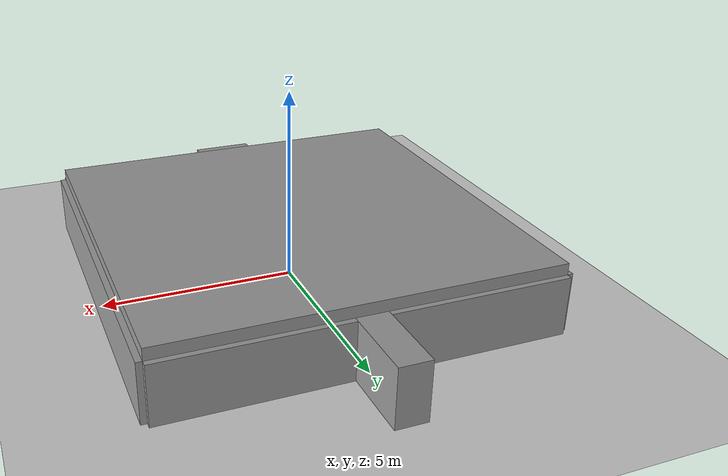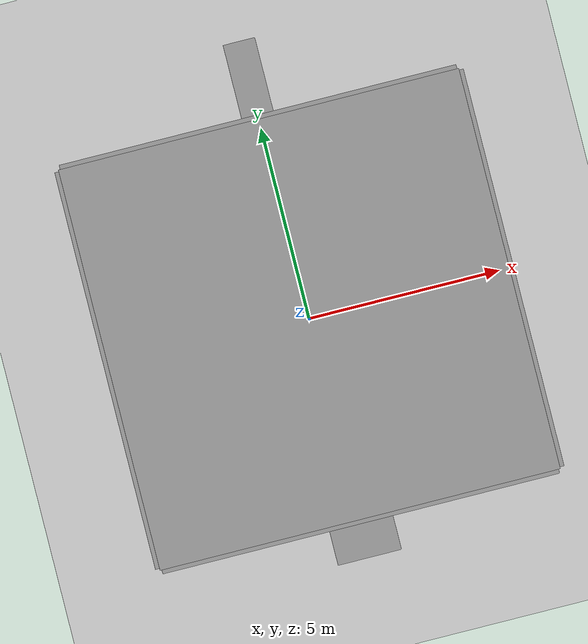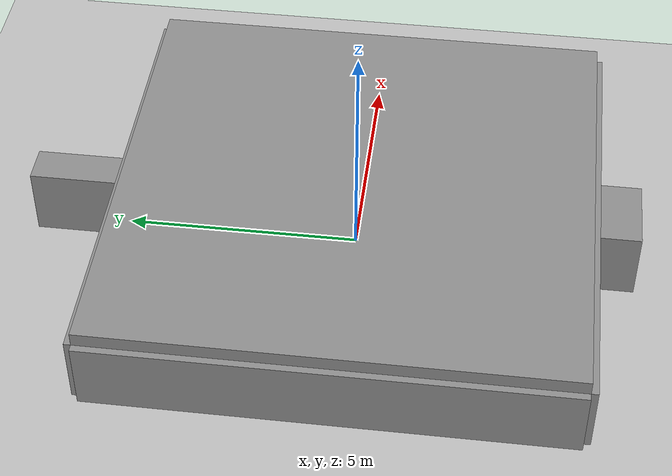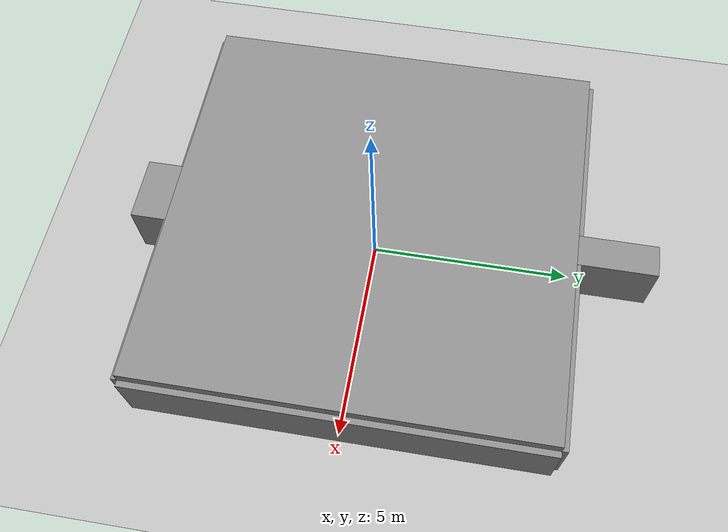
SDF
<sdf version="1.7">
 <world name="default">
  <light name="sun" type="directional">
   <pose>0 0 10 0 -0 0</pose>
   <diffuse>0.8 0.8 0.8 1</diffuse>
   <specular>0.2 0.2 0.2 1</specular>
   <attenuation>
    <range>1000</range>
    <constant>0.9</constant>
    <linear>0.01</linear>
    <quadratic>0.001</quadratic>
   </attenuation>
   <direction>-0.5 0.1 -0.9</direction>
   <spot><inner_angle>0</inner_angle><outer_angle>0</outer_angle><falloff>0</falloff></spot>
  </light>
  <model name="ground_plane">
   <static>1</static>
   <link name="link">
    <collision name="collision">
     <geometry><plane><normal>0 0 1</normal><size>100 100</size></plane></geometry>
     <surface>
      <contact><collide_bitmask>65535</collide_bitmask></contact>
      <friction><ode><mu>100</mu><mu2>50</mu2></ode></friction>
     </surface>
    </collision>
    <visual name="visual">
     <cast_shadows>0</cast_shadows>
     <geometry><plane><normal>0 0 1</normal><size>100 100</size></plane></geometry>
     <material>
      <script><uri>file://media/materials/scripts/gazebo.material</uri><name>Gazebo/Grey</name></script>
     </material>
    </visual>
   </link>
  </model>
  <gravity>0 0 -9.8</gravity>
  <magnetic_field>6e-06 2.3e-05 -4.2e-05</magnetic_field>
  <atmosphere type="adiabatic"/>
  <physics type="ode">
   <max_step_size>0.001</max_step_size>
   <real_time_factor>1</real_time_factor>
   <real_time_update_rate>1000</real_time_update_rate>
  </physics>
  <scene><ambient>0.4 0.4 0.4 1</ambient><background>0.7 0.7 0.7 1</background><shadows>1</shadows></scene>
  <spherical_coordinates>
   <surface_model>EARTH_WGS84</surface_model>
   <latitude_deg>0</latitude_deg>
   <longitude_deg>0</longitude_deg>
   <elevation>0</elevation>
   <heading_deg>0</heading_deg>
  </spherical_coordinates>
  <model name="arena">
   <link name="link_0">
    <inertial>
     <mass>1</mass>
     <inertia>
      <ixx>0.166667</ixx>
      <ixy>0</ixy>
      <ixz>0</ixz>
      <iyy>0.166667</iyy>
      <iyz>0</iyz>
      <izz>0.166667</izz>
     </inertia>
    </inertial>
    <pose>0 0 0.1 0 -0 0</pose>
    <visual name="visual">
     <pose>0 5 0 0 -0 0</pose>
     <geometry><box><size>10 0.3 2</size></box></geometry>
     <material>
      <lighting>1</lighting>
      <script><uri>file://media/materials/scripts/gazebo.material</uri><name>Gazebo/Grey</name></script>
      <shader type="pixel"><normal_map>__default__</normal_map></shader>
      <ambient>0.3 0.3 0.3 1</ambient>
      <diffuse>0.7 0.7 0.7 1</diffuse>
      <specular>0.01 0.01 0.01 1</specular>
      <emissive>0 0 0 1</emissive>
     </material>
    </visual>
    <collision name="collision">
     <laser_retro>1</laser_retro>
     <pose>0 5 0 0 -0 0</pose>
     <geometry><box><size>10 0.3 2</size></box></geometry>
     <surface>
      <friction>
       <ode><mu>1</mu><mu2>1</mu2><fdir1>0 0 0</fdir1><slip1>0</slip1><slip2>0</slip2></ode>
       <torsional>
        <coefficient>1</coefficient>
        <patch_radius>0</patch_radius>
        <surface_radius>0</surface_radius>
        <use_patch_radius>1</use_patch_radius>
        <ode><slip>0</slip></ode>
       </torsional>
      </friction>
      <bounce><restitution_coefficient>0</restitution_coefficient><threshold>1e+06</threshold></bounce>
      <contact>
       <collide_without_contact>0</collide_without_contact>
       <collide_without_contact_bitmask>1</collide_without_contact_bitmask>
       <collide_bitmask>1</collide_bitmask>
       <ode>
        <soft_cfm>0</soft_cfm>
        <soft_erp>0.2</soft_erp>
        <kp>1e+13</kp>
        <kd>1</kd>
        <max_vel>0.01</max_vel>
        <min_depth>0</min_depth>
       </ode>
       <bullet>
        <split_impulse>1</split_impulse>
        <split_impulse_penetration_threshold>-0.01</split_impulse_penetration_threshold>
        <soft_cfm>0</soft_cfm>
        <soft_erp>0.2</soft_erp>
        <kp>1e+13</kp>
        <kd>1</kd>
       </bullet>
      </contact>
     </surface>
    </collision>
   </link>
   <link name="link_0_clone">
    <inertial>
     <mass>1</mass>
     <inertia>
      <ixx>0.166667</ixx>
      <ixy>0</ixy>
      <ixz>0</ixz>
      <iyy>0.166667</iyy>
      <iyz>0</iyz>
      <izz>0.166667</izz>
     </inertia>
    </inertial>
    <pose>0 0 0.1 0 -0 0</pose>
    <visual name="visual">
     <pose>0 -5 0 0 -0 0</pose>
     <geometry><box><size>10 0.3 2</size></box></geometry>
     <material>
      <lighting>1</lighting>
      <script><uri>file://media/materials/scripts/gazebo.material</uri><name>Gazebo/Grey</name></script>
      <shader type="pixel"><normal_map>__default__</normal_map></shader>
      <ambient>0.3 0.3 0.3 1</ambient>
      <diffuse>0.7 0.7 0.7 1</diffuse>
      <specular>0.01 0.01 0.01 1</specular>
      <emissive>0 0 0 1</emissive>
     </material>
    </visual>
    <collision name="collision">
     <laser_retro>1</laser_retro>
     <pose>0 -5 0 0 -0 0</pose>
     <geometry><box><size>10 0.3 2</size></box></geometry>
     <surface>
      <friction>
       <ode><mu>1</mu><mu2>1</mu2><fdir1>0 0 0</fdir1><slip1>0</slip1><slip2>0</slip2></ode>
       <torsional>
        <coefficient>1</coefficient>
        <patch_radius>0</patch_radius>
        <surface_radius>0</surface_radius>
        <use_patch_radius>1</use_patch_radius>
        <ode><slip>0</slip></ode>
       </torsional>
      </friction>
      <bounce><restitution_coefficient>0</restitution_coefficient><threshold>1e+06</threshold></bounce>
      <contact>
       <collide_without_contact>0</collide_without_contact>
       <collide_without_contact_bitmask>1</collide_without_contact_bitmask>
       <collide_bitmask>1</collide_bitmask>
       <ode>
        <soft_cfm>0</soft_cfm>
        <soft_erp>0.2</soft_erp>
        <kp>1e+13</kp>
        <kd>1</kd>
        <max_vel>0.01</max_vel>
        <min_depth>0</min_depth>
       </ode>
       <bullet>
        <split_impulse>1</split_impulse>
        <split_impulse_penetration_threshold>-0.01</split_impulse_penetration_threshold>
        <soft_cfm>0</soft_cfm>
        <soft_erp>0.2</soft_erp>
        <kp>1e+13</kp>
        <kd>1</kd>
       </bullet>
      </contact>
     </surface>
    </collision>
   </link>
   <link name="link_0_clone_0">
    <inertial>
     <mass>1</mass>
     <inertia>
      <ixx>0.166667</ixx>
      <ixy>0</ixy>
      <ixz>0</ixz>
      <iyy>0.166667</iyy>
      <iyz>0</iyz>
      <izz>0.166667</izz>
     </inertia>
    </inertial>
    <pose>0 0 0.1 0 -0 0</pose>
    <visual name="visual">
     <pose>5 0 0 0 -0 0</pose>
     <geometry><box><size>0.3 10 2</size></box></geometry>
     <material>
      <lighting>1</lighting>
      <script><uri>file://media/materials/scripts/gazebo.material</uri><name>Gazebo/Grey</name></script>
      <shader type="pixel"><normal_map>__default__</normal_map></shader>
      <ambient>0.3 0.3 0.3 1</ambient>
      <diffuse>0.7 0.7 0.7 1</diffuse>
      <specular>0.01 0.01 0.01 1</specular>
      <emissive>0 0 0 1</emissive>
     </material>
    </visual>
    <collision name="collision">
     <laser_retro>1</laser_retro>
     <pose>5 0 0 0 -0 0</pose>
     <geometry><box><size>0.3 10 2</size></box></geometry>
     <surface>
      <friction>
       <ode><mu>1</mu><mu2>1</mu2><fdir1>0 0 0</fdir1><slip1>0</slip1><slip2>0</slip2></ode>
       <torsional>
        <coefficient>1</coefficient>
        <patch_radius>0</patch_radius>
        <surface_radius>0</surface_radius>
        <use_patch_radius>1</use_patch_radius>
        <ode><slip>0</slip></ode>
       </torsional>
      </friction>
      <bounce><restitution_coefficient>0</restitution_coefficient><threshold>1e+06</threshold></bounce>
      <contact>
       <collide_without_contact>0</collide_without_contact>
       <collide_without_contact_bitmask>1</collide_without_contact_bitmask>
       <collide_bitmask>1</collide_bitmask>
       <ode>
        <soft_cfm>0</soft_cfm>
        <soft_erp>0.2</soft_erp>
        <kp>1e+13</kp>
        <kd>1</kd>
        <max_vel>0.01</max_vel>
        <min_depth>0</min_depth>
       </ode>
       <bullet>
        <split_impulse>1</split_impulse>
        <split_impulse_penetration_threshold>-0.01</split_impulse_penetration_threshold>
        <soft_cfm>0</soft_cfm>
        <soft_erp>0.2</soft_erp>
        <kp>1e+13</kp>
        <kd>1</kd>
       </bullet>
      </contact>
     </surface>
    </collision>
   </link>
   <link name="link_0_clone_1">
    <inertial>
     <mass>1</mass>
     <inertia>
      <ixx>0.166667</ixx>
      <ixy>0</ixy>
      <ixz>0</ixz>
      <iyy>0.166667</iyy>
      <iyz>0</iyz>
      <izz>0.166667</izz>
     </inertia>
    </inertial>
    <pose>0 0 0.1 0 -0 0</pose>
    <visual name="visual">
     <pose>-5 0 0 0 -0 0</pose>
     <geometry><box><size>0.3 10 2</size></box></geometry>
     <material>
      <lighting>1</lighting>
      <script><uri>file://media/materials/scripts/gazebo.material</uri><name>Gazebo/Grey</name></script>
      <shader type="pixel"><normal_map>__default__</normal_map></shader>
      <ambient>0.3 0.3 0.3 1</ambient>
      <diffuse>0.7 0.7 0.7 1</diffuse>
      <specular>0.01 0.01 0.01 1</specular>
      <emissive>0 0 0 1</emissive>
     </material>
    </visual>
    <collision name="collision">
     <laser_retro>1</laser_retro>
     <pose>-5 0 0 0 -0 0</pose>
     <geometry><box><size>0.3 10 2</size></box></geometry>
     <surface>
      <friction>
       <ode><mu>1</mu><mu2>1</mu2><fdir1>0 0 0</fdir1><slip1>0</slip1><slip2>0</slip2></ode>
       <torsional>
        <coefficient>1</coefficient>
        <patch_radius>0</patch_radius>
        <surface_radius>0</surface_radius>
        <use_patch_radius>1</use_patch_radius>
        <ode><slip>0</slip></ode>
       </torsional>
      </friction>
      <bounce><restitution_coefficient>0</restitution_coefficient><threshold>1e+06</threshold></bounce>
      <contact>
       <collide_without_contact>0</collide_without_contact>
       <collide_without_contact_bitmask>1</collide_without_contact_bitmask>
       <collide_bitmask>1</collide_bitmask>
       <ode>
        <soft_cfm>0</soft_cfm>
        <soft_erp>0.2</soft_erp>
        <kp>1e+13</kp>
        <kd>1</kd>
        <max_vel>0.01</max_vel>
        <min_depth>0</min_depth>
       </ode>
       <bullet>
        <split_impulse>1</split_impulse>
        <split_impulse_penetration_threshold>-0.01</split_impulse_penetration_threshold>
        <soft_cfm>0</soft_cfm>
        <soft_erp>0.2</soft_erp>
        <kp>1e+13</kp>
        <kd>1</kd>
       </bullet>
      </contact>
     </surface>
    </collision>
   </link>
   <link name="link_1">
    <inertial>
     <mass>1</mass>
     <inertia>
      <ixx>0.166667</ixx>
      <ixy>0</ixy>
      <ixz>0</ixz>
      <iyy>0.166667</iyy>
      <iyz>0</iyz>
      <izz>0.166667</izz>
     </inertia>
    </inertial>
    <pose>0 0 0.1 0 -0 0</pose>
    <visual name="visual">
     <pose>0 5 0 0 -0 0</pose>
     <geometry><box><size>0.8 4 2</size></box></geometry>
     <material>
      <lighting>1</lighting>
      <script><uri>file://media/materials/scripts/gazebo.material</uri><name>Gazebo/Grey</name></script>
      <shader type="pixel"><normal_map>__default__</normal_map></shader>
      <ambient>0.3 0.3 0.3 1</ambient>
      <diffuse>0.7 0.7 0.7 1</diffuse>
      <specular>0.01 0.01 0.01 1</specular>
      <emissive>0 0 0 1</emissive>
     </material>
    </visual>
    <collision name="collision">
     <laser_retro>1</laser_retro>
     <pose>0 5 0 0 -0 0</pose>
     <geometry><box><size>0.8 4 2</size></box></geometry>
     <surface>
      <friction>
       <ode><mu>1</mu><mu2>1</mu2><fdir1>0 0 0</fdir1><slip1>0</slip1><slip2>0</slip2></ode>
       <torsional>
        <coefficient>1</coefficient>
        <patch_radius>0</patch_radius>
        <surface_radius>0</surface_radius>
        <use_patch_radius>1</use_patch_radius>
        <ode><slip>0</slip></ode>
       </torsional>
      </friction>
      <bounce><restitution_coefficient>0</restitution_coefficient><threshold>1e+06</threshold></bounce>
      <contact>
       <collide_without_contact>0</collide_without_contact>
       <collide_without_contact_bitmask>1</collide_without_contact_bitmask>
       <collide_bitmask>1</collide_bitmask>
       <ode>
        <soft_cfm>0</soft_cfm>
        <soft_erp>0.2</soft_erp>
        <kp>1e+13</kp>
        <kd>1</kd>
        <max_vel>0.01</max_vel>
        <min_depth>0</min_depth>
       </ode>
       <bullet>
        <split_impulse>1</split_impulse>
        <split_impulse_penetration_threshold>-0.01</split_impulse_penetration_threshold>
        <soft_cfm>0</soft_cfm>
        <soft_erp>0.2</soft_erp>
        <kp>1e+13</kp>
        <kd>1</kd>
       </bullet>
      </contact>
     </surface>
    </collision>
   </link>
   <link name="link_2">
    <inertial>
     <mass>1</mass>
     <inertia>
      <ixx>0.166667</ixx>
      <ixy>0</ixy>
      <ixz>0</ixz>
      <iyy>0.166667</iyy>
      <iyz>0</iyz>
      <izz>0.166667</izz>
     </inertia>
    </inertial>
    <pose>0 0 0.1 0 -0 0</pose>
    <visual name="visual">
     <pose>0 -5 0 0 -0 0</pose>
     <geometry><box><size>1.6 2 2</size></box></geometry>
     <material>
      <lighting>1</lighting>
      <script><uri>file://media/materials/scripts/gazebo.material</uri><name>Gazebo/Grey</name></script>
      <shader type="pixel"><normal_map>__default__</normal_map></shader>
      <ambient>0.3 0.3 0.3 1</ambient>
      <diffuse>0.7 0.7 0.7 1</diffuse>
      <specular>0.01 0.01 0.01 1</specular>
      <emissive>0 0 0 1</emissive>
     </material>
    </visual>
    <collision name="collision">
     <laser_retro>1</laser_retro>
     <pose>0 -5 0 0 -0 0</pose>
     <geometry><box><size>1.6 2 2</size></box></geometry>
     <surface>
      <friction>
       <ode><mu>1</mu><mu2>1</mu2><fdir1>0 0 0</fdir1><slip1>0</slip1><slip2>0</slip2></ode>
       <torsional>
        <coefficient>1</coefficient>
        <patch_radius>0</patch_radius>
        <surface_radius>0</surface_radius>
        <use_patch_radius>1</use_patch_radius>
        <ode><slip>0</slip></ode>
       </torsional>
      </friction>
      <bounce><restitution_coefficient>0</restitution_coefficient><threshold>1e+06</threshold></bounce>
      <contact>
       <collide_without_contact>0</collide_without_contact>
       <collide_without_contact_bitmask>1</collide_without_contact_bitmask>
       <collide_bitmask>1</collide_bitmask>
       <ode>
        <soft_cfm>0</soft_cfm>
        <soft_erp>0.2</soft_erp>
        <kp>1e+13</kp>
        <kd>1</kd>
        <max_vel>0.01</max_vel>
        <min_depth>0</min_depth>
       </ode>
       <bullet>
        <split_impulse>1</split_impulse>
        <split_impulse_penetration_threshold>-0.01</split_impulse_penetration_threshold>
        <soft_cfm>0</soft_cfm>
        <soft_erp>0.2</soft_erp>
        <kp>1e+13</kp>
        <kd>1</kd>
       </bullet>
      </contact>
     </surface>
    </collision>
   </link>
   <link name="link_0_clone_2">
    <inertial>
     <mass>1</mass>
     <inertia>
      <ixx>0.166667</ixx>
      <ixy>0</ixy>
      <ixz>0</ixz>
      <iyy>0.166667</iyy>
      <iyz>0</iyz>
      <izz>0.166667</izz>
     </inertia>
    </inertial>
    <pose>0 0 0.1 0 -0 0</pose>
    <visual name="visual">
     <pose>0 0 1.15 0 -0 0</pose>
     <geometry><box><size>10 10 0.3</size></box></geometry>
     <material>
      <lighting>1</lighting>
      <script><uri>file://media/materials/scripts/gazebo.material</uri><name>Gazebo/Grey</name></script>
      <shader type="pixel"><normal_map>__default__</normal_map></shader>
      <ambient>0.3 0.3 0.3 1</ambient>
      <diffuse>0.7 0.7 0.7 1</diffuse>
      <specular>0.01 0.01 0.01 1</specular>
      <emissive>0 0 0 1</emissive>
     </material>
    </visual>
    <collision name="collision">
     <laser_retro>1</laser_retro>
     <pose>0 0 1.15 0 -0 0</pose>
     <geometry><box><size>10 10 0.3</size></box></geometry>
     <surface>
      <friction>
       <ode><mu>1</mu><mu2>1</mu2><fdir1>0 0 0</fdir1><slip1>0</slip1><slip2>0</slip2></ode>
       <torsional>
        <coefficient>1</coefficient>
        <patch_radius>0</patch_radius>
        <surface_radius>0</surface_radius>
        <use_patch_radius>1</use_patch_radius>
        <ode><slip>0</slip></ode>
       </torsional>
      </friction>
      <bounce><restitution_coefficient>0</restitution_coefficient><threshold>1e+06</threshold></bounce>
      <contact>
       <collide_without_contact>0</collide_without_contact>
       <collide_without_contact_bitmask>1</collide_without_contact_bitmask>
       <collide_bitmask>1</collide_bitmask>
       <ode>
        <soft_cfm>0</soft_cfm>
        <soft_erp>0.2</soft_erp>
        <kp>1e+13</kp>
        <kd>1</kd>
        <max_vel>0.01</max_vel>
        <min_depth>0</min_depth>
       </ode>
       <bullet>
        <split_impulse>1</split_impulse>
        <split_impulse_penetration_threshold>-0.01</split_impulse_penetration_threshold>
        <soft_cfm>0</soft_cfm>
        <soft_erp>0.2</soft_erp>
        <kp>1e+13</kp>
        <kd>1</kd>
       </bullet>
      </contact>
     </surface>
    </collision>
   </link>
   <joint name="link_0_clone_2_JOINT_0" type="fixed">
    <parent>link_0_clone_2</parent>
    <child>link_0</child>
    <physics>
     <ode><limit><cfm>0</cfm><erp>0.2</erp></limit><suspension><cfm>0</cfm><erp>0.2</erp></suspension></ode>
    </physics>
   </joint>
   <joint name="link_0_clone_2_JOINT_1" type="fixed">
    <parent>link_0_clone_2</parent>
    <child>link_0_clone</child>
    <physics>
     <ode><limit><cfm>0</cfm><erp>0.2</erp></limit><suspension><cfm>0</cfm><erp>0.2</erp></suspension></ode>
    </physics>
   </joint>
   <joint name="link_0_clone_2_JOINT_2" type="fixed">
    <parent>link_0_clone_2</parent>
    <child>link_0_clone_0</child>
    <physics>
     <ode><limit><cfm>0</cfm><erp>0.2</erp></limit><suspension><cfm>0</cfm><erp>0.2</erp></suspension></ode>
    </physics>
   </joint>
   <joint name="link_0_clone_2_JOINT_3" type="fixed">
    <parent>link_0_clone_2</parent>
    <child>link_0_clone_1</child>
    <physics>
     <ode><limit><cfm>0</cfm><erp>0.2</erp></limit><suspension><cfm>0</cfm><erp>0.2</erp></suspension></ode>
    </physics>
   </joint>
   <joint name="link_0_clone_2_JOINT_4" type="fixed">
    <parent>link_0_clone_2</parent>
    <child>link_1</child>
    <physics>
     <ode><limit><cfm>0</cfm><erp>0.2</erp></limit><suspension><cfm>0</cfm><erp>0.2</erp></suspension></ode>
    </physics>
   </joint>
   <joint name="link_0_clone_2_JOINT_5" type="fixed">
    <parent>link_0_clone_2</parent>
    <child>link_2</child>
    <physics>
     <ode><limit><cfm>0</cfm><erp>0.2</erp></limit><suspension><cfm>0</cfm><erp>0.2</erp></suspension></ode>
    </physics>
   </joint>
   <static>1</static>
   <pose>0 0 0.4 0 -0 0</pose>
  </model>
 </world>
</sdf>
